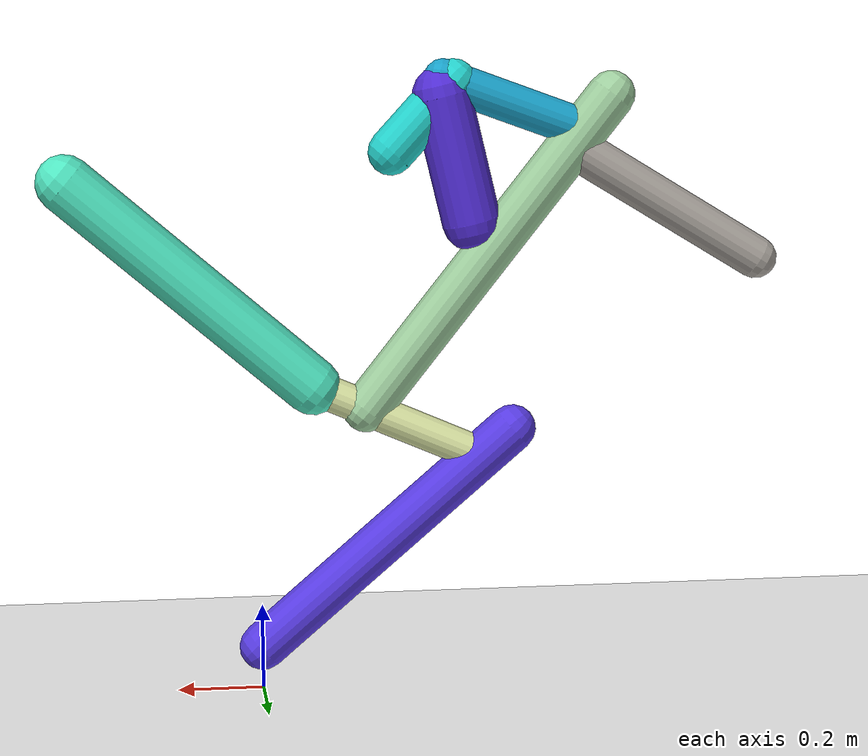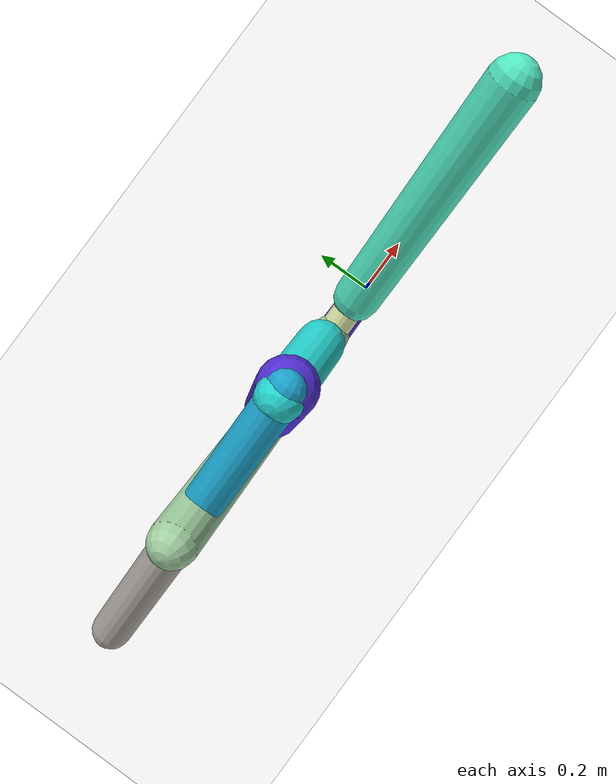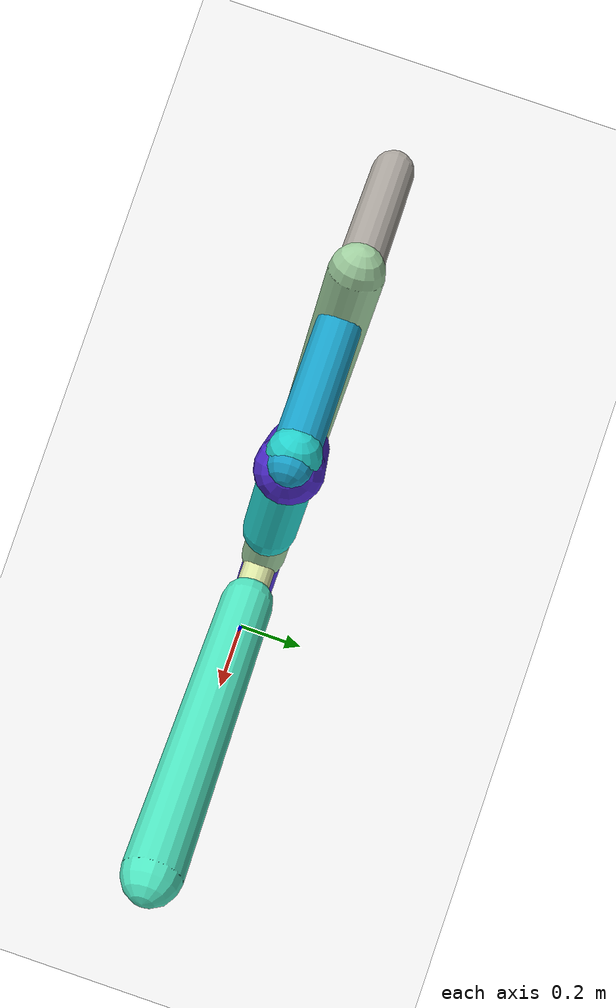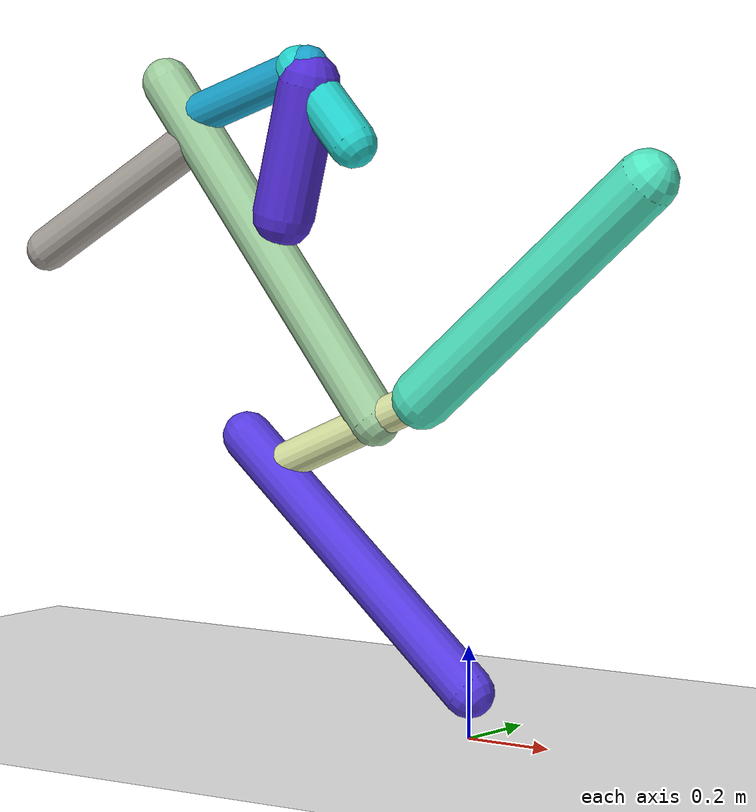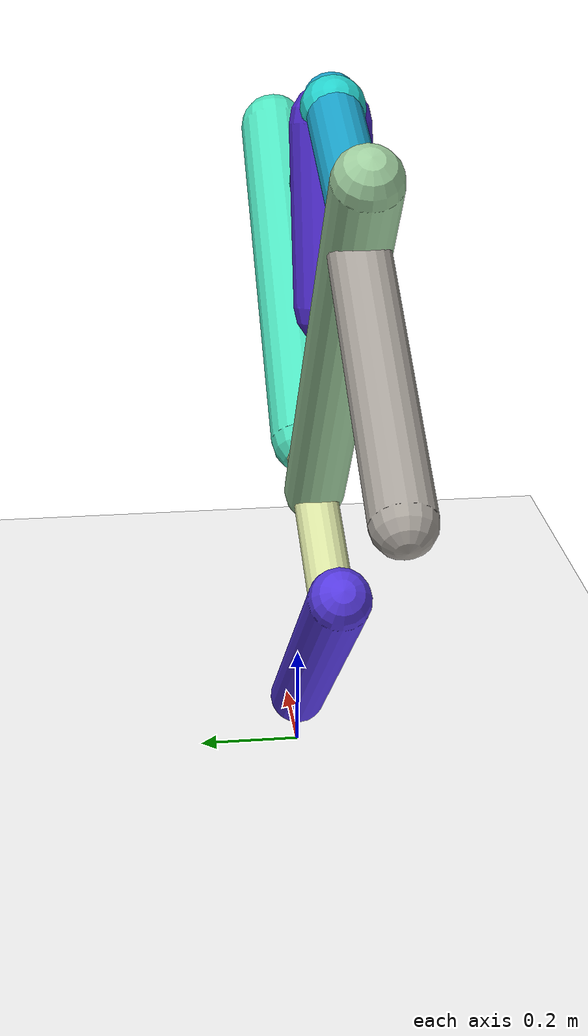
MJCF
<mujoco model="morphology">
  <option timestep="0.01"/>
  <default>
    <default class="/"/>
    <default class="0/"/>
    <default class="0/1/"/>
    <default class="0/1/2/"/>
    <default class="0/1/3/"/>
    <default class="0/1/3/4/"/>
    <default class="0/1/3/4/5/"/>
    <default class="0/1/3/4/5/6/"/>
    <default class="0/1/3/7/"/>
  </default>
  <asset>
    <texture name="texplane" type="2d" builtin="checker" rgb1="0.10000000000000001 0.20000000000000001 0.29999999999999999" rgb2="0.20000000000000001 0.29999999999999999 0.40000000000000002" width="300" height="300"/>
    <material name="MatPlane" class="/" texture="texplane" texrepeat="20 20" specular="1" shininess="1" reflectance="0.5"/>
  </asset>
  <worldbody>
    <light name="//unnamed_light_0" class="/" directional="true" pos="0 0 1.5" dir="0 0 -1.3" cutoff="100" exponent="1" diffuse="1 1 1" specular="0.10000000000000001 0.10000000000000001 0.10000000000000001"/>
    <geom name="ground" class="/" type="plane" size="15 15 0.5" material="MatPlane" rgba="1 1 1 1"/>
    <site name="body" class="/" size="9.9999999999999995e-07 9.9999999999999995e-07 9.9999999999999995e-07" pos="0 0 0.10000000000000001"/>
    <body pos="0 0 0.10000000000000001" name="0/">
      <joint name="0/rootx/" class="/" type="slide" axis="1 0 0" limited="false" stiffness="0" armature="0" damping="0"/>
      <joint name="0/rootz/" class="/" type="slide" axis="0 0 1" limited="false" stiffness="0" armature="0" damping="0"/>
      <joint name="0/rooty/" class="/" type="hinge" axis="0 1 0" limited="false" stiffness="0" armature="0" damping="0"/>
      <geom name="0/geom" class="0/" type="capsule" contype="1" conaffinity="1" condim="3" size="0.055362694448792146" rgba="0.34123013434879035 0.23097372009363693 0.88451826832175906 1" friction="0.59999999999999998 0.10000000000000001 0.10000000000000001" fromto="0 0 0 -0.58995297469924779 0 0.50866682665337115"/>
      <site name="0/end0" class="0/" size="0.0050000000000000001" pos="-0.58995297469924779 0 0.50866682665337115"/>
      <site name="0/attach1" class="0/" size="9.9999999999999995e-07 9.9999999999999995e-07 9.9999999999999995e-07" pos="-0.51723217077795147 0 0.44596579428518057"/>
      <body pos="-0.51723217077795147 0 0.44596579428518057" name="0/1/">
        <geom name="0/1/geom" class="0/1/" type="capsule" contype="1" conaffinity="1" condim="3" size="0.041256814170679584" rgba="0.85674612859797716 0.89548587864999407 0.64203471260681355 1" friction="0.59999999999999998 0.10000000000000001 0.10000000000000001" fromto="0 0 0 0.39868896501661233 0 0.17360117520169516"/>
        <site name="0/1/end1" class="0/1/" size="0.0050000000000000001" pos="0.39868896501661233 0 0.17360117520169516"/>
        <site name="0/1/attach2" class="0/1/" size="9.9999999999999995e-07 9.9999999999999995e-07 9.9999999999999995e-07" pos="0.39554679327276066 0 0.17223297905060408"/>
        <body pos="0.39554679327276066 0 0.17223297905060408" name="0/1/2/">
          <joint name="0/1/2/joint/" class="0/1/" type="hinge" axis="0 1 0" limited="true" range="-58.057009747917192 58.057009747917192"/>
          <geom name="0/1/2/geom" class="0/1/2/" type="capsule" contype="1" conaffinity="1" condim="3" size="0.066319335934401896" rgba="0.31162631113043582 0.89888011199477702 0.75632039753958169 1" friction="0.59999999999999998 0.10000000000000001 0.10000000000000001" fromto="0 0 0 0.55282672265874266 0 0.47433331763873987"/>
          <site name="0/1/2/end2" class="0/1/2/" size="0.0050000000000000001" pos="0.55282672265874266 0 0.47433331763873987"/>
        </body>
        <site name="0/1/attach3" class="0/1/" size="9.9999999999999995e-07 9.9999999999999995e-07 9.9999999999999995e-07" pos="0.27061314993545155 0 0.11783311045960213"/>
        <body pos="0.27061314993545155 0 0.11783311045960213" name="0/1/3/">
          <joint name="0/1/3/joint/" class="0/1/" type="hinge" axis="0 1 0" limited="true" range="-30.726109704420281 30.726109704420281"/>
          <geom name="0/1/3/geom" class="0/1/3/" type="capsule" contype="1" conaffinity="1" condim="3" size="0.055619326789559095" rgba="0.62272952238599477 0.80666183125940927 0.62114794668932816 1" friction="0.59999999999999998 0.10000000000000001 0.10000000000000001" fromto="0 0 0 -0.56709246914423139 0 0.71893372526380261"/>
          <site name="0/1/3/end3" class="0/1/3/" size="0.0050000000000000001" pos="-0.56709246914423139 0 0.71893372526380261"/>
          <site name="0/1/3/attach4" class="0/1/3/" size="9.9999999999999995e-07 9.9999999999999995e-07 9.9999999999999995e-07" pos="-0.50491883905180579 0 0.64011285930701489"/>
          <body pos="-0.50491883905180579 0 0.64011285930701489" name="0/1/3/4/">
            <joint name="0/1/3/4/joint/" class="0/1/3/" type="hinge" axis="0 1 0" limited="true" range="-68.791526811892794 68.791526811892794"/>
            <geom name="0/1/3/4/geom" class="0/1/3/4/" type="capsule" contype="1" conaffinity="1" condim="3" size="0.045817448458853348" rgba="0.099039854911446845 0.62980656955682002 0.78562921131522134 1" friction="0.59999999999999998 0.10000000000000001 0.10000000000000001" fromto="0 0 0 0.32670640017584529 0 0.11713816725971871"/>
            <site name="0/1/3/4/end4" class="0/1/3/4/" size="0.0050000000000000001" pos="0.32670640017584529 0 0.11713816725971871"/>
            <site name="0/1/3/4/attach5" class="0/1/3/4/" size="9.9999999999999995e-07 9.9999999999999995e-07 9.9999999999999995e-07" pos="0.30390327644548448 0 0.10896227563306747"/>
            <body pos="0.30390327644548448 0 0.10896227563306747" name="0/1/3/4/5/">
              <geom name="0/1/3/4/5/geom" class="0/1/3/4/5/" type="capsule" contype="1" conaffinity="1" condim="3" size="0.053820972565777919" rgba="0.14225990823934909 0.81904754286834403 0.79921540816311809 1" friction="0.59999999999999998 0.10000000000000001 0.10000000000000001" fromto="0 0 0 0.14233978619985532 0 -0.15639187659514708"/>
              <site name="0/1/3/4/5/end5" class="0/1/3/4/5/" size="0.0050000000000000001" pos="0.14233978619985532 0 -0.15639187659514708"/>
              <site name="0/1/3/4/5/attach6" class="0/1/3/4/5/" size="9.9999999999999995e-07 9.9999999999999995e-07 9.9999999999999995e-07" pos="0.027165864748163952 0 -0.029847737450793162"/>
              <body pos="0.027165864748163952 0 -0.029847737450793162" name="0/1/3/4/5/6/">
                <joint name="0/1/3/4/5/6/joint/" class="0/1/3/4/5/" type="hinge" axis="0 1 0" limited="true" range="-69.529404146753336 69.529404146753336"/>
                <geom name="0/1/3/4/5/6/geom" class="0/1/3/4/5/6/" type="capsule" contype="1" conaffinity="1" condim="3" size="0.068197953234621009" rgba="0.31937449573277732 0.17730330356530366 0.82710528486261192 1" friction="0.59999999999999998 0.10000000000000001 0.10000000000000001" fromto="0 0 0 -0.070735759695260136 0 -0.28751978553859397"/>
                <site name="0/1/3/4/5/6/end6" class="0/1/3/4/5/6/" size="0.0050000000000000001" pos="-0.070735759695260136 0 -0.28751978553859397"/>
              </body>
            </body>
          </body>
          <site name="0/1/3/attach7" class="0/1/3/" size="9.9999999999999995e-07 9.9999999999999995e-07 9.9999999999999995e-07" pos="-0.4761130489116509 0 0.60359420469345548"/>
          <body pos="-0.4761130489116509 0 0.60359420469345548" name="0/1/3/7/">
            <joint name="0/1/3/7/joint/" class="0/1/3/" type="hinge" axis="0 1 0" limited="true" range="-54.428299036402436 54.428299036402436"/>
            <geom name="0/1/3/7/geom" class="0/1/3/7/" type="capsule" contype="1" conaffinity="1" condim="3" size="0.049291850988027811" rgba="0.65630392959547912 0.63454693685856534 0.60763296636105879 1" friction="0.59999999999999998 0.10000000000000001 0.10000000000000001" fromto="0 0 0 -0.44196038115568154 0 -0.26498378321453814"/>
            <site name="0/1/3/7/end7" class="0/1/3/7/" size="0.0050000000000000001" pos="-0.44196038115568154 0 -0.26498378321453814"/>
          </body>
        </body>
      </body>
      <camera name="0/side" class="0/" mode="trackcom" pos="0.40000000000000002 -4 0.20000000000000001" quat="0.70699999999999996 0.70699999999999996 0 0"/>
    </body>
  </worldbody>
  <actuator>
    <motor name="0/1/2/motor" class="0/1/2/" ctrllimited="true" ctrlrange="-1 1" gear="67" joint="0/1/2/joint/"/>
    <motor name="0/1/3/motor" class="0/1/3/" ctrllimited="true" ctrlrange="-1 1" gear="68" joint="0/1/3/joint/"/>
    <motor name="0/1/3/4/motor" class="0/1/3/4/" ctrllimited="true" ctrlrange="-1 1" gear="68" joint="0/1/3/4/joint/"/>
    <motor name="0/1/3/4/5/6/motor" class="0/1/3/4/5/6/" ctrllimited="true" ctrlrange="-1 1" gear="83" joint="0/1/3/4/5/6/joint/"/>
    <motor name="0/1/3/7/motor" class="0/1/3/7/" ctrllimited="true" ctrlrange="-1 1" gear="78" joint="0/1/3/7/joint/"/>
  </actuator>
  <sensor>
    <subtreelinvel name="velocity" body="0/"/>
  </sensor>
</mujoco>
